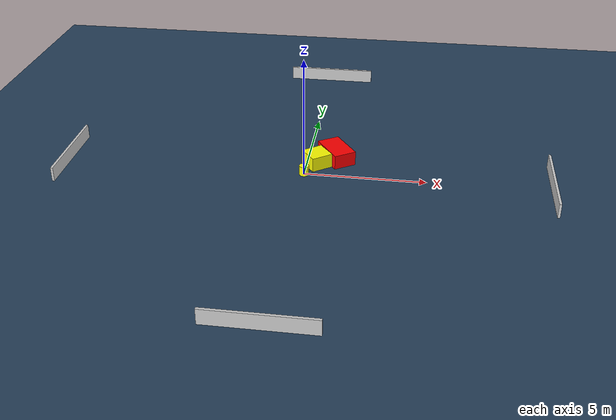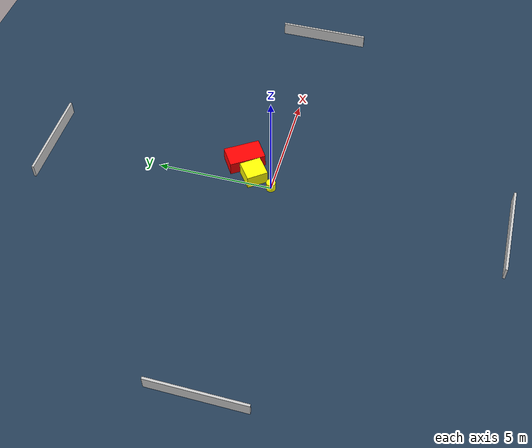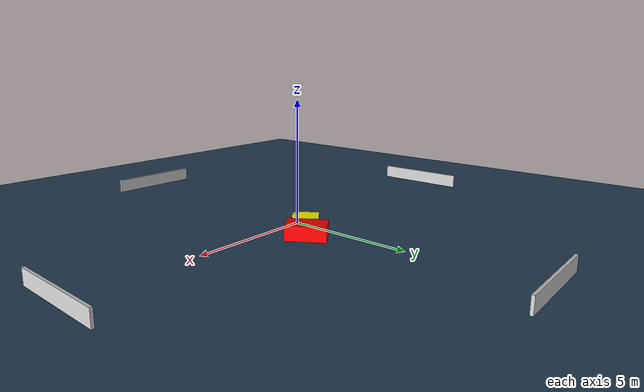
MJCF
<?xml version="1.0" ?>
<mujoco model="generated_environment">
  <option timestep="0.01" integrator="RK4" cone="elliptic"/>
  <default>
    <geom density="1"/>
  </default>
  <asset>
    <texture builtin="gradient" height="3072" name="skybox" rgb1="0.3 0.5 0.7" rgb2="0 0 0" type="skybox" width="512"/>
    <texture builtin="checker" height="300" name="groundplane" rgb1="0.2 0.3 0.4" rgb2="0.1 0.2 0.3" type="2d" width="300"/>
    <material name="groundplane" reflectance="0.2" texrepeat="5 5" texture="groundplane"/>
  </asset>
  <worldbody>
    <light dir="0 0 -1" directional="true" pos="0 0 1.5"/>
    <geom condim="3" friction="0.5 0.005 0.001" material="groundplane" name="floor" pos="0 0 0" size="0 0 0.05" type="plane"/>
    <body name="walls">
      <geom name="wall_1" condim="4" pos="-10.0 0.0 0.3" rgba="0.800000011920929 0.800000011920929 0.800000011920929 1.0" size="0.05 2.0 0.3" type="box"/>
      <geom name="wall_2" condim="4" pos="10.0 0.0 0.3" rgba="0.800000011920929 0.800000011920929 0.800000011920929 1.0" size="0.05 2.0 0.3" type="box"/>
      <geom name="wall_3" condim="4" pos="0.0 -10.0 0.3" rgba="0.800000011920929 0.800000011920929 0.800000011920929 1.0" size="2.0 0.05 0.3" type="box"/>
      <geom name="wall_4" condim="4" pos="0.0 10.0 0.3" rgba="0.800000011920929 0.800000011920929 0.800000011920929 1.0" size="2.0 0.05 0.3" type="box"/>
    </body>
    <body name="robot">
      <joint name="joint_x" type="slide" pos="0 0 0" axis="1 0 0"/>
      <joint name="joint_y" type="slide" pos="0 0 0" axis="0 1 0"/>
      <geom name="robot" type="cylinder" pos="0.0 0.0 0.2" size="0.2 0.2 0.0" mass="5.0" friction="1.0 0.005 0.0001" condim="4" rgba="1.0 1.0 0.0 1.0"/>
    </body>
    <body name="obstacle_1_movable">
      <geom name="obstacle_1_movable" condim="4" pos="0.4215732793966497 0.8773359080305883 0.3" euler="0 0 307.0100374916167" friction="0.0 0.005 0.001" rgba="1.0 1.0 0.0 1.0" size="0.46260226918473907 0.4615760584261556 0.3" type="box" mass="0.1"/>
      <joint type="free"/>
    </body>
    <body name="obstacle_2_static">
      <geom name="obstacle_2_static" condim="4" pos="1.1716891116639259 1.5043803082046097 0.3" euler="0 0 33.75846453097762" friction="0.0 0.005 0.001" rgba="1.0 0.0 0.0 1.0" size="0.481504874571859 0.7888195770041835 0.3" type="box"/>
    </body>
  </worldbody>
  <actuator>
    <motor name="actuator_x" joint="joint_x" gear="1" ctrlrange="-1 1"/>
    <motor name="actuator_y" joint="joint_y" gear="1" ctrlrange="-1 1"/>
  </actuator>
</mujoco>
